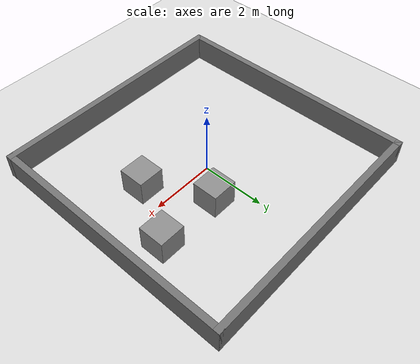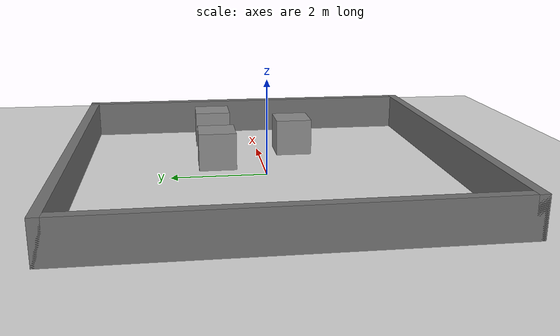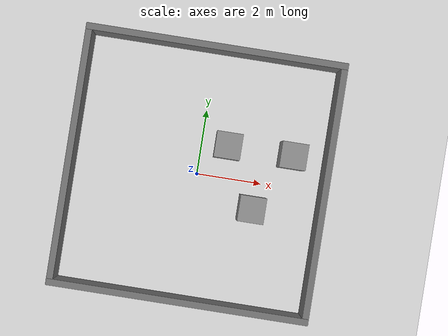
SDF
<?xml version="1.0" ?>
<sdf version="1.6">
  <world name="obstacle_arena">
    <light name="sun" type="directional">
      <cast_shadows>true</cast_shadows>
      <pose>0 0 10 0 0 0</pose>
      <diffuse>0.8 0.8 0.8 1.0</diffuse>
      <specular>0.2 0.2 0.2 1.0</specular>
      <attenuation>
        <range>1000</range>
        <constant>0.9</constant>
        <linear>0.01</linear>
        <quadratic>0.001</quadratic>
      </attenuation>
      <direction>-0.5 0.2 -0.9</direction>
    </light>

    <model name="ground_plane">
      <static>true</static>
      <link name="link">
        <collision name="collision">
          <geometry>
            <plane>
              <normal>0 0 1</normal>
              <size>100 100</size>
            </plane>
          </geometry>
          <surface>
            <friction>
              <ode>
                <mu>100</mu>
                <mu2>100</mu2>
              </ode>
            </friction>
          </surface>
        </collision>
        <visual name="visual">
          <geometry>
            <plane>
              <normal>0 0 1</normal>
              <size>100 100</size>
            </plane>
          </geometry>
          <material>
            <ambient>0.85 0.85 0.85 1.0</ambient>
            <diffuse>0.85 0.85 0.85 1.0</diffuse>
            <specular>0.1 0.1 0.1 1.0</specular>
          </material>
        </visual>
      </link>
    </model>

    <scene>
      <ambient>0.45 0.45 0.45 1.0</ambient>
      <background>0.95 0.95 0.95 1.0</background>
    </scene>

    <physics name="default_physics" type="ode">
      <max_step_size>0.001</max_step_size>
      <real_time_update_rate>1000</real_time_update_rate>
    </physics>

    <model name="wall_north">
      <static>true</static>
      <pose>0 3.9 0.4 0 0 0</pose>
      <link name="link">
        <collision name="collision">
          <geometry>
            <box>
              <size>8.0 0.2 0.8</size>
            </box>
          </geometry>
        </collision>
        <visual name="visual">
          <geometry>
            <box>
              <size>8.0 0.2 0.8</size>
            </box>
          </geometry>
          <material>
            <ambient>0.45 0.45 0.45 1.0</ambient>
            <diffuse>0.45 0.45 0.45 1.0</diffuse>
            <specular>0.1 0.1 0.1 1.0</specular>
          </material>
        </visual>
      </link>
    </model>

    <model name="wall_south">
      <static>true</static>
      <pose>0 -3.9 0.4 0 0 0</pose>
      <link name="link">
        <collision name="collision">
          <geometry>
            <box>
              <size>8.0 0.2 0.8</size>
            </box>
          </geometry>
        </collision>
        <visual name="visual">
          <geometry>
            <box>
              <size>8.0 0.2 0.8</size>
            </box>
          </geometry>
          <material>
            <ambient>0.45 0.45 0.45 1.0</ambient>
            <diffuse>0.45 0.45 0.45 1.0</diffuse>
            <specular>0.1 0.1 0.1 1.0</specular>
          </material>
        </visual>
      </link>
    </model>

    <model name="wall_east">
      <static>true</static>
      <pose>3.9 0 0.4 0 0 0</pose>
      <link name="link">
        <collision name="collision">
          <geometry>
            <box>
              <size>0.2 8.0 0.8</size>
            </box>
          </geometry>
        </collision>
        <visual name="visual">
          <geometry>
            <box>
              <size>0.2 8.0 0.8</size>
            </box>
          </geometry>
          <material>
            <ambient>0.45 0.45 0.45 1.0</ambient>
            <diffuse>0.45 0.45 0.45 1.0</diffuse>
            <specular>0.1 0.1 0.1 1.0</specular>
          </material>
        </visual>
      </link>
    </model>

    <model name="wall_west">
      <static>true</static>
      <pose>-3.9 0 0.4 0 0 0</pose>
      <link name="link">
        <collision name="collision">
          <geometry>
            <box>
              <size>0.2 8.0 0.8</size>
            </box>
          </geometry>
        </collision>
        <visual name="visual">
          <geometry>
            <box>
              <size>0.2 8.0 0.8</size>
            </box>
          </geometry>
          <material>
            <ambient>0.45 0.45 0.45 1.0</ambient>
            <diffuse>0.45 0.45 0.45 1.0</diffuse>
            <specular>0.1 0.1 0.1 1.0</specular>
          </material>
        </visual>
      </link>
    </model>

    <model name="obstacle_1">
      <static>true</static>
      <pose>0.8 1.0 0.4 0 0 0</pose>
      <link name="link">
        <collision name="collision">
          <geometry>
            <box>
              <size>0.8 0.8 0.8</size>
            </box>
          </geometry>
        </collision>
        <visual name="visual">
          <geometry>
            <box>
              <size>0.8 0.8 0.8</size>
            </box>
          </geometry>
          <material>
            <ambient>0.55 0.55 0.55 1.0</ambient>
            <diffuse>0.55 0.55 0.55 1.0</diffuse>
            <specular>0.1 0.1 0.1 1.0</specular>
          </material>
        </visual>
      </link>
    </model>

    <model name="obstacle_2">
      <static>true</static>
      <pose>1.8 -0.8 0.4 0 0 0</pose>
      <link name="link">
        <collision name="collision">
          <geometry>
            <box>
              <size>0.8 0.8 0.8</size>
            </box>
          </geometry>
        </collision>
        <visual name="visual">
          <geometry>
            <box>
              <size>0.8 0.8 0.8</size>
            </box>
          </geometry>
          <material>
            <ambient>0.55 0.55 0.55 1.0</ambient>
            <diffuse>0.55 0.55 0.55 1.0</diffuse>
            <specular>0.1 0.1 0.1 1.0</specular>
          </material>
        </visual>
      </link>
    </model>

    <model name="obstacle_3">
      <static>true</static>
      <pose>2.8 1.0 0.4 0 0 0</pose>
      <link name="link">
        <collision name="collision">
          <geometry>
            <box>
              <size>0.8 0.8 0.8</size>
            </box>
          </geometry>
        </collision>
        <visual name="visual">
          <geometry>
            <box>
              <size>0.8 0.8 0.8</size>
            </box>
          </geometry>
          <material>
            <ambient>0.55 0.55 0.55 1.0</ambient>
            <diffuse>0.55 0.55 0.55 1.0</diffuse>
            <specular>0.1 0.1 0.1 1.0</specular>
          </material>
        </visual>
      </link>
    </model>
  </world>
</sdf>
